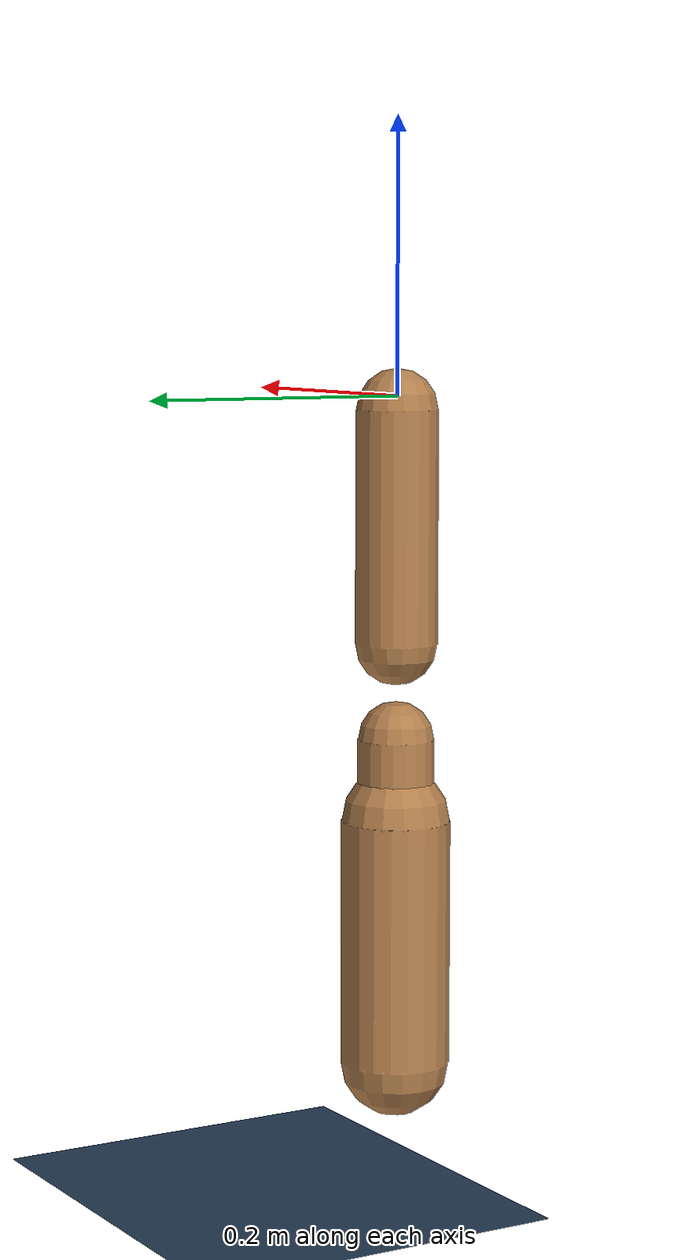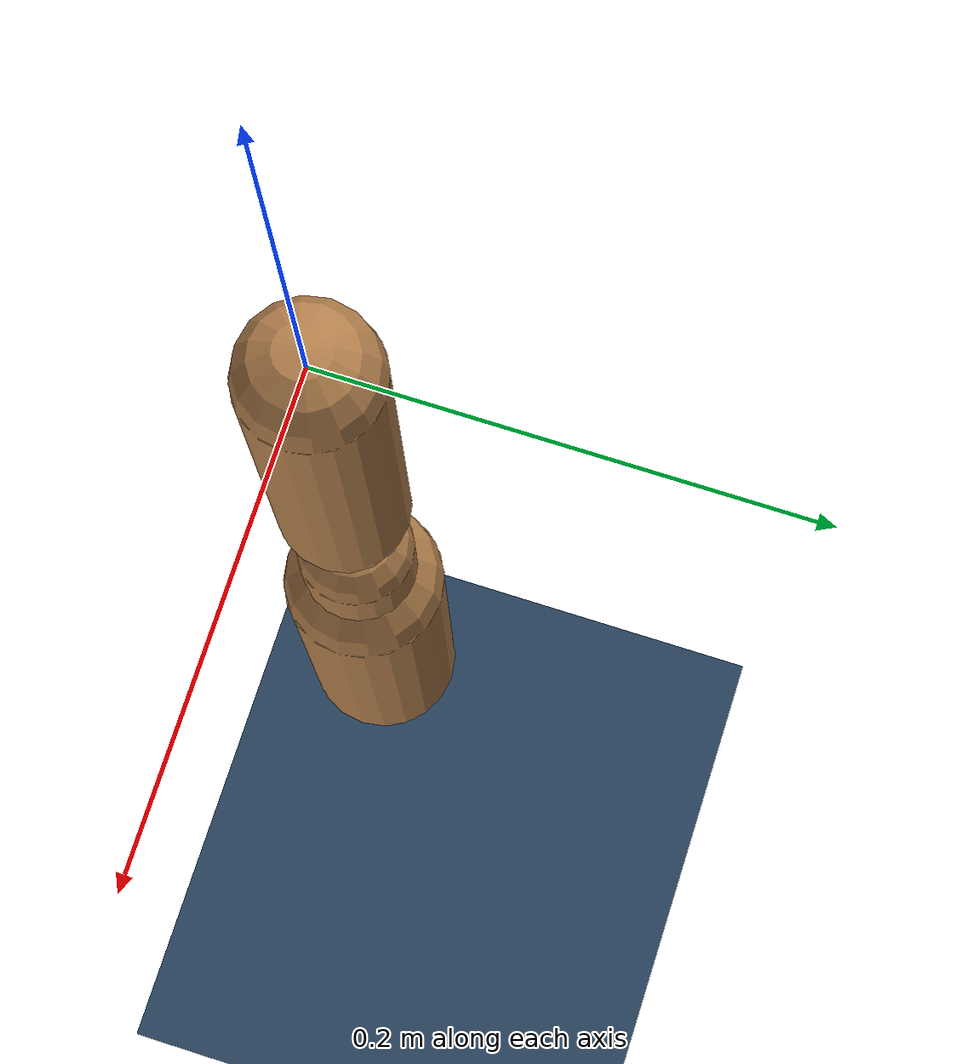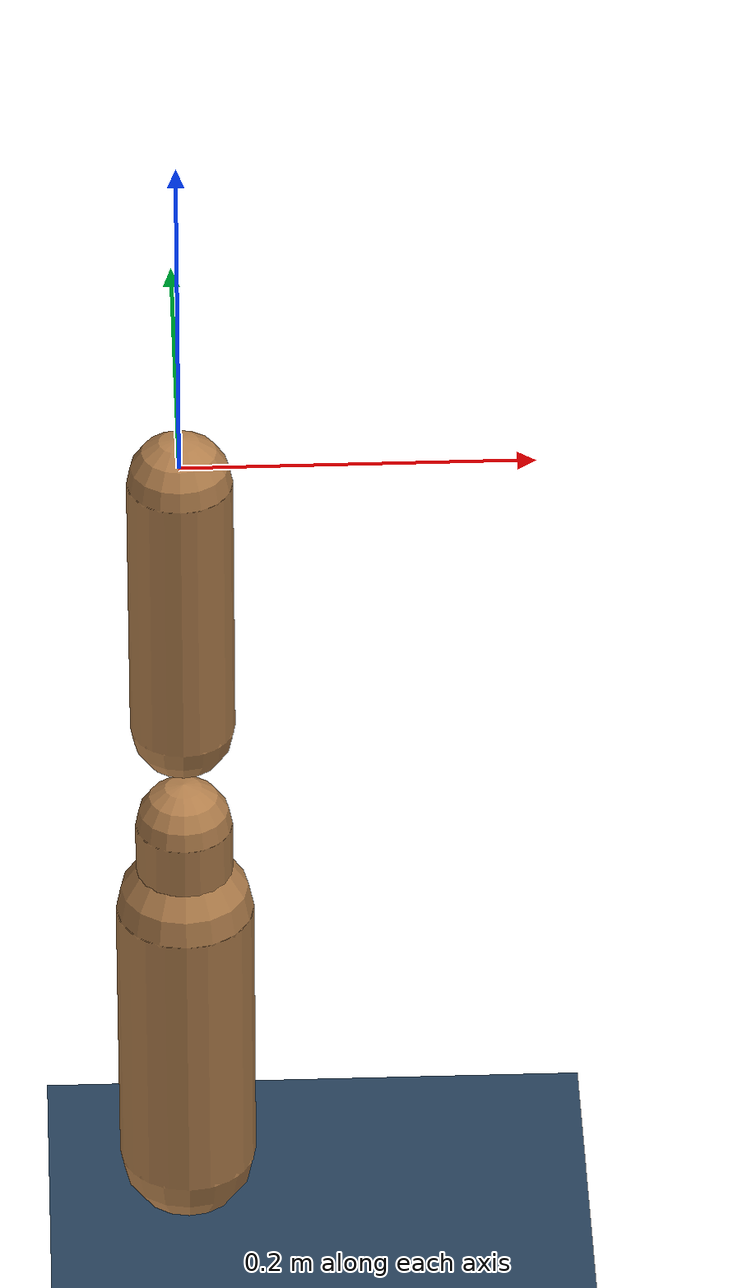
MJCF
<mujoco model="finger">

    <visual>
        <headlight ambient=".4 .4 .4" diffuse=".8 .8 .8" specular="0.1 0.1 0.1"/>
        <map znear=".01"/>
        <quality shadowsize="2048"/>
    </visual>

    <asset>
        <texture name="skybox" type="skybox" builtin="gradient" rgb1=".4 .6 .8" rgb2="0 0 0"
                 width="800" height="800" mark="random" markrgb="1 1 1"/>
    </asset>

    <asset>
        <texture name="grid" type="2d" builtin="checker" rgb1=".1 .2 .3" rgb2=".2 .3 .4" width="300" height="300" mark="edge" markrgb=".2 .3 .4"/>
        <material name="grid" texture="grid" texrepeat="1 1" texuniform="true" reflectance=".2"/>
        <material name="self" rgba=".7 .5 .3 1"/>
        <material name="self_default" rgba=".7 .5 .3 1"/>
        <material name="self_highlight" rgba="0 .5 .3 1"/>
        <material name="effector" rgba=".7 .4 .2 1"/>
        <material name="effector_default" rgba=".7 .4 .2 1"/>
        <material name="effector_highlight" rgba="0 .5 .3 1"/>
        <material name="decoration" rgba=".3 .5 .7 1"/>
        <material name="eye" rgba="0 .2 1 1"/>
        <material name="target" rgba=".6 .3 .3 1"/>
        <material name="target_default" rgba=".6 .3 .3 1"/>
        <material name="target_highlight" rgba=".6 .3 .3 .4"/>
    </asset>

<!--   important mjx options  -->
  <option timestep="0.0075" impratio="10" iterations="100" ls_iterations="4">
    <flag eulerdamp="disable"/>
  </option>

<!--  reduce contact computation for mjx -->
 <custom>
    <numeric data="15" name="max_contact_points"/>
    <numeric data="15" name="max_geom_pairs"/>
  </custom>

    <default>`
        <geom solimp="0 0.99 0.1" solref="0.02 1"/>
        <joint type="hinge" axis="0 -1 0"/>
        <motor ctrllimited="true" ctrlrange="-1 1"/>
        <default class="finger">
            <site type="ellipsoid" size=".025 .03 .025" rgba=".5 .5 .5 .3" group="3"/>
        </default>
    </default>

    <worldbody>
        <light name="light" directional="true" diffuse=".6 .6 .6" pos="0 0 2" specular=".3 .3 .3"/>
        <geom name="ground" type="plane" pos="0 0 -0.6" size=".6 .2 10" material="grid"/>
        <camera name="cam0" pos="0 -1 .8" xyaxes="1 0 0 0 1 2"/>
        <camera name="cam1" pos="0 -1 .4" xyaxes="1 0 0 0 0 1" />

        <body name="proximal" pos="-.0 0 -0.01" childclass="finger">
            <joint name="proximal" range="-150 -80" ref="-90" damping="0.05" limited="false" />
            <geom name="proximal" type="capsule" material="self" size=".03" fromto="0 0 0 0 0 -.17"/>
            <body name="distal" pos="0 0 -.24" childclass="finger">
                <joint name="distal" range="-50 50" damping="0.05" limited="false"/>
                <geom name="distal" type="capsule" size=".028" material="self" fromto="0 0 0 0 0 -.16"/>
            </body>
        </body>

        <body name="spinner" pos="-.0 0 -.4">
            <joint name="hinge" range="-50 50" frictionloss=".01" damping=".35" limited="false"/>
            <geom name="cap1" type="capsule" size=".04 .09" material="self" pos="0 0 0" />
        </body>

    </worldbody>

    <actuator>
        <motor name="proximal" joint="proximal" gear="3"/>
        <motor name="distal" joint="distal" gear="1.5"/>
    </actuator>
</mujoco>
